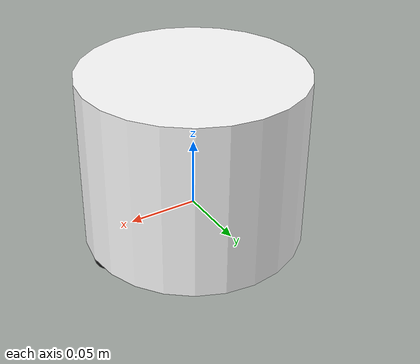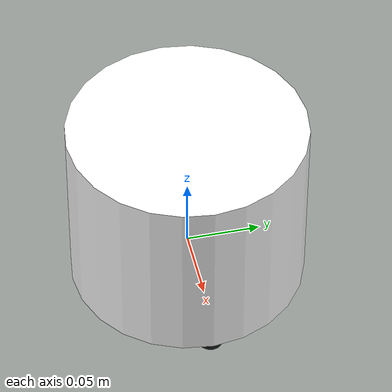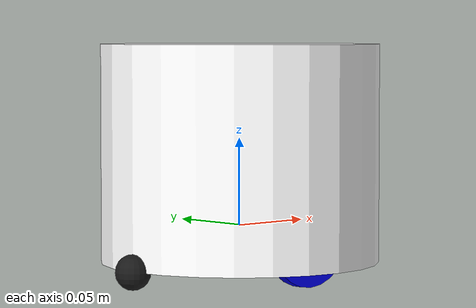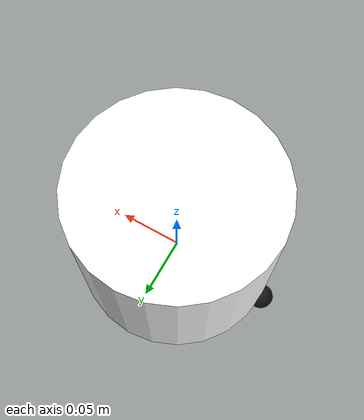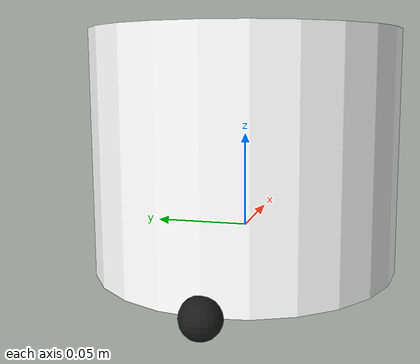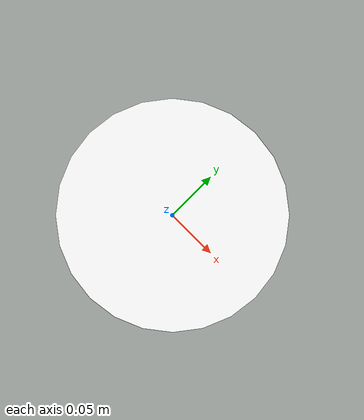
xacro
<?xml version="1.0"?>
<robot xmlns:xacro="http://www.ros.org/wiki/xacro"  name="robot">

    <xacro:arg name="use_ros2_control" default="true"/>

    <xacro:include filename="robot_core.xacro"/>

    <xacro:if value="$(arg use_ros2_control)">
        <xacro:include filename="ros2_control.xacro"/>
    </xacro:if>
    <xacro:unless value="$(arg use_ros2_control)">
        <xacro:include filename="gazebo_control.xacro"/>
    </xacro:unless>

</robot>

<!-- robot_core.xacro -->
<robot xmlns:xacro="http://www.ros.org/wiki/xacro">

    <xacro:include filename="inertial_macros.xacro"/>

    <material name="black">
        <color rgba="0.1 0.1 0.1 1"/>
    </material>

    <material name="white">
        <color rgba="1 1 1 1"/>
    </material>

    <material name="orange">
        <color rgba="1 0.5 0 1"/>
    </material>

    <material name="blue">
        <color rgba="0 0 1 1"/>
    </material>

    <!-- Base link -->
    <link name="base_link">

    </link>

    <!-- Chassis Link -->

    <joint name="chassis_joint" type="fixed">
        <parent link="base_link"/>
        <child link="chassis"/>
        <origin xyz="-0.08 0 -0.021"/>
    </joint>

    <link name="chassis">
        <visual>
            <origin xyz="0.08 0 0.0625"/>
            <geometry>
                <cylinder radius="0.08" length="0.125"/>
            </geometry>
            <material name="white"/>
        </visual>
        <collision>
            <origin xyz="0.08 0 0.0625"/>
            <geometry>
                <cylinder radius="0.08" length="0.125"/>
            </geometry>
        </collision>
        <xacro:inertial_cylinder mass="0.5" length="0.125" radius="0.08">
            <origin xyz="0.08 0 0.0625"/>
        </xacro:inertial_cylinder>
    </link>

    <gazebo reference="chassis">
        <material>Gazebo/White</material>
    </gazebo>

    <!-- Left Wheel Link-->

    <joint name="left_wheel_joint" type="continuous">
        <parent link="base_link"/>
        <child link="left_wheel"/>
        <origin xyz="0 0.055 0" rpy="-${pi/2} 0 0"/>
        <axis xyz="0 0 1"/>
    </joint>

    <link name="left_wheel">
        <visual>
            <origin xyz="0 0 0"/>
            <geometry>
                <cylinder radius="0.031" length="0.006"/>
            </geometry>
            <material name="blue"/>
        </visual>
        <collision>
            <origin xyz="0 0 0"/>
            <geometry>
                <sphere radius="0.031" />
            </geometry>
        </collision>
        <xacro:inertial_cylinder mass="0.1" length="0.125" radius="0.08">
            <origin xyz="0 0 0"/>
        </xacro:inertial_cylinder>
    </link>

    <gazebo reference="left_wheel">
        <material>Gazebo/Blue</material>
    </gazebo>

    <!-- right Wheel Link-->

    <joint name="right_wheel_joint" type="continuous">
        <parent link="base_link"/>
        <child link="right_wheel"/>
        <origin xyz="0 -0.055 0" rpy="${pi/2} 0 0"/>
        <axis xyz="0 0 -1"/>
    </joint>

    <link name="right_wheel">
        <visual>
            <origin xyz="0 0 0"/>
            <geometry>
                <cylinder radius="0.031" length="0.006"/>
            </geometry>
            <material name="blue"/>
        </visual>
        <collision>
            <origin xyz="0 0 0"/>
            <geometry>
                <sphere radius="0.031"/>
            </geometry>
        </collision>
        <xacro:inertial_cylinder mass="0.1" length="0.125" radius="0.08">
            <origin xyz="0 0 0"/>
        </xacro:inertial_cylinder>
    </link>

    <gazebo reference="right_wheel">
        <material>Gazebo/Blue</material>
    </gazebo>

    <!-- caster Wheel link -->
    <joint name="caster_wheel_joint_back" type="fixed">
        <parent link="chassis"/>
        <child link="caster_wheel_back"/>
        <origin xyz="0 0 0" />
    </joint>

    <link name="caster_wheel_back">
        <visual>
            <origin xyz="0 0 0"/>
            <geometry>
                <sphere radius="0.01" />
            </geometry>
            <material name="black"/>
        </visual>
        <collision>
            <origin xyz="0 0 0"/>
            <geometry>
                <sphere radius="0.01" />
            </geometry>
        </collision>
        <xacro:inertial_sphere mass="0.1" radius="0.01">
            <origin xyz="0 0 0"/>
        </xacro:inertial_sphere>
    </link>

    <gazebo reference="caster_wheel_back">
        <material>Gazebo/Black</material>
        <mu1 value="0.001"/>
        <mu2 value="0.001"/>
    </gazebo>

    <!-- caster Wheel link -->
    <joint name="caster_wheel_joint" type="fixed">
        <parent link="chassis"/>
        <child link="caster_wheel"/>
        <origin xyz="0 0 0" />
    </joint>

    <link name="caster_wheel">
        <visual>
            <origin xyz="0.150 0 0"/>
            <geometry>
                <sphere radius="0.01" />
            </geometry>
            <material name="black"/>
        </visual>
        <collision>
            <origin xyz="0.150 0 0"/>
            <geometry>
                <sphere radius="0.01" />
            </geometry>
        </collision>
        <xacro:inertial_sphere mass="0.1" radius="0.01">
            <origin xyz="0 0 0"/>
        </xacro:inertial_sphere>
    </link>

    <gazebo reference="caster_wheel">
        <material>Gazebo/Black</material>
        <mu1 value="0.001"/>
        <mu2 value="0.001"/>
    </gazebo>

</robot>
